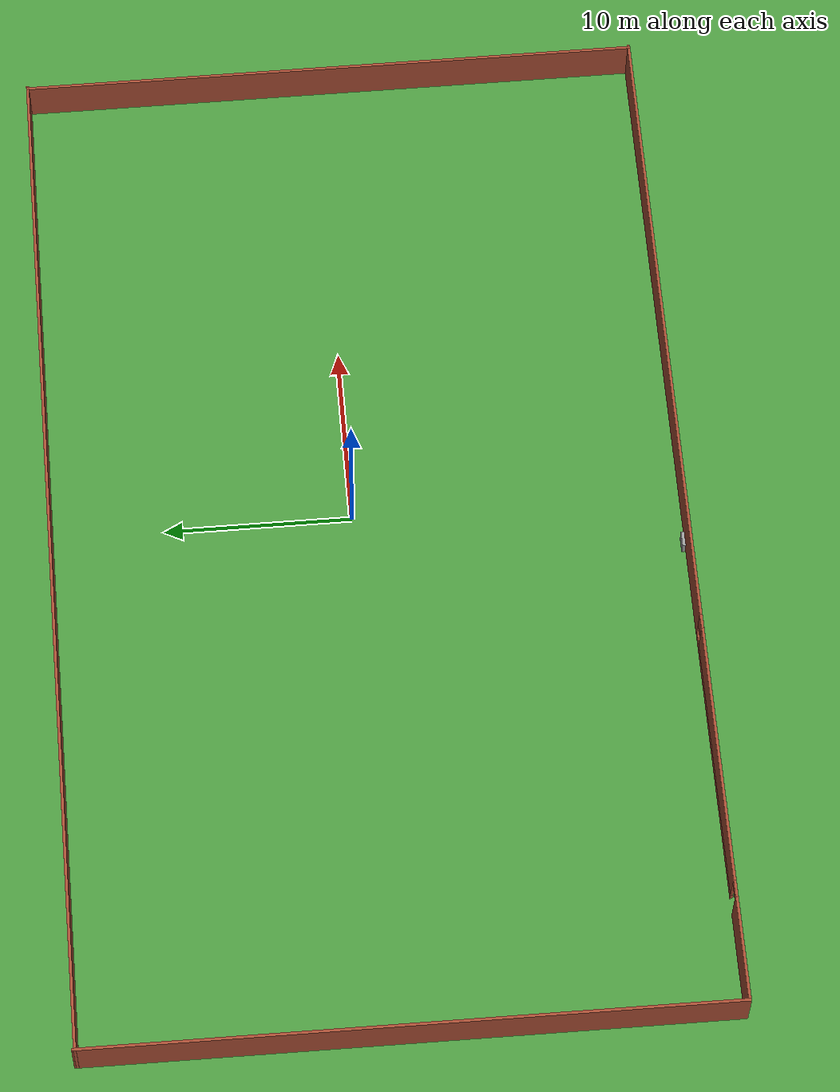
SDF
<sdf version="1.7">
 <world name="default">
  <scene>
   <sky><clouds><speed>12</speed></clouds></sky>
   <ambient>0.4 0.4 0.4 1</ambient>
   <background>0.7 0.7 0.7 1</background>
   <shadows>1</shadows>
  </scene>
  <light name="sun" type="directional">
   <pose>0 0 10 0 -0 0</pose>
   <diffuse>0.8 0.8 0.8 1</diffuse>
   <specular>0.2 0.2 0.2 1</specular>
   <attenuation>
    <range>1000</range>
    <constant>0.9</constant>
    <linear>0.01</linear>
    <quadratic>0.001</quadratic>
   </attenuation>
   <direction>-0.5 0.1 -0.9</direction>
   <spot><inner_angle>0</inner_angle><outer_angle>0</outer_angle><falloff>0</falloff></spot>
  </light>
  <model name="custom_ground">
   <static>1</static>
   <link name="link">
    <collision name="collision">
     <geometry><plane><normal>0 0 1</normal><size>100 100</size></plane></geometry>
     <surface><friction><ode><mu>100</mu><mu2>50</mu2></ode></friction></surface>
    </collision>
    <visual name="visual">
     <cast_shadows>0</cast_shadows>
     <geometry><plane><normal>0 0 1</normal><size>100 100</size></plane></geometry>
     <material>
      <script>
       <uri>model://custom_ground/materials/scripts</uri>
       <uri>model://custom_ground/materials/textures/</uri>
       <name>CustomGround/GrassDiffuseSpecular</name>
      </script>
     </material>
    </visual>
   </link>
  </model>
  <gravity>0 0 -9.8</gravity>
  <magnetic_field>6e-06 2.3e-05 -4.2e-05</magnetic_field>
  <atmosphere type="adiabatic"/>
  <physics type="ode">
   <max_step_size>0.001</max_step_size>
   <real_time_factor>1</real_time_factor>
   <real_time_update_rate>1000</real_time_update_rate>
  </physics>
  <spherical_coordinates>
   <surface_model>EARTH_WGS84</surface_model>
   <latitude_deg>0</latitude_deg>
   <longitude_deg>0</longitude_deg>
   <elevation>0</elevation>
   <heading_deg>0</heading_deg>
  </spherical_coordinates>
  <model name="garden_amass">
   <pose>-1.18987 -0.745 0 0 -0 0</pose>
   <link name="Wall_0">
    <collision name="Wall_0_Collision">
     <geometry><box><size>56.7501 0.15 2.5</size></box></geometry>
     <pose>0 0 1.25 0 -0 0</pose>
    </collision>
    <visual name="Wall_0_Visual">
     <pose>0 0 1.25 0 -0 0</pose>
     <geometry><box><size>56.7501 0.15 2.5</size></box></geometry>
     <material>
      <script><uri>file://media/materials/scripts/gazebo.material</uri><name>Gazebo/Bricks</name></script>
      <ambient>0.435294 0.796078 0.67451 1</ambient>
     </material>
     <meta><layer>0</layer></meta>
    </visual>
    <pose>-0.064699 16.7197 0 0 -0 3.14159</pose>
   </link>
   <link name="Wall_17">
    <collision name="Wall_17_Collision">
     <geometry><box><size>33.6698 0.15 2.5</size></box></geometry>
     <pose>0 0 1.25 0 -0 0</pose>
    </collision>
    <visual name="Wall_17_Visual">
     <pose>0 0 1.25 0 -0 0</pose>
     <geometry><box><size>33.6698 0.15 2.5</size></box></geometry>
     <material>
      <script><uri>file://media/materials/scripts/gazebo.material</uri><name>Gazebo/Bricks</name></script>
      <ambient>0.435294 0.796078 0.67451 1</ambient>
     </material>
     <meta><layer>0</layer></meta>
    </visual>
    <pose>28.2196 -0.040083 0 0 -0 -1.56693</pose>
   </link>
   <link name="Wall_18">
    <pose>0.075222 -16.7999 0 0 -0 3.14159</pose>
    <visual name="Wall_18_Visual_0">
     <pose>-10.6309 0 1.25 0 -0 0</pose>
     <geometry><box><size>35.4673 0.15 2.5</size></box></geometry>
     <material>
      <script><uri>file://media/materials/scripts/gazebo.material</uri><name>Gazebo/Bricks</name></script>
      <ambient>0.435294 0.796078 0.67451 1</ambient>
     </material>
     <meta><layer>0</layer></meta>
    </visual>
    <collision name="Wall_18_Collision_0">
     <geometry><box><size>35.4673 0.15 2.5</size></box></geometry>
     <pose>-10.6309 0 1.25 0 -0 0</pose>
    </collision>
    <visual name="Wall_18_Visual_1">
     <pose>25.6409 0 1.25 0 -0 0</pose>
     <geometry><box><size>5.44722 0.15 2.5</size></box></geometry>
     <material>
      <script><uri>file://media/materials/scripts/gazebo.material</uri><name>Gazebo/Bricks</name></script>
      <ambient>0.435294 0.796078 0.67451 1</ambient>
     </material>
     <meta><layer>0</layer></meta>
    </visual>
    <collision name="Wall_18_Collision_1">
     <geometry><box><size>5.44722 0.15 2.5</size></box></geometry>
     <pose>25.6409 0 1.25 0 -0 0</pose>
    </collision>
    <visual name="Wall_18_Visual_2">
     <pose>14.56 0 0.25 0 -0 0</pose>
     <geometry><box><size>14.9145 0.15 0.5</size></box></geometry>
     <material>
      <script><uri>file://media/materials/scripts/gazebo.material</uri><name>Gazebo/Bricks</name></script>
      <ambient>0.435294 0.796078 0.67451 1</ambient>
     </material>
     <meta><layer>0</layer></meta>
    </visual>
    <collision name="Wall_18_Collision_2">
     <geometry><box><size>14.9145 0.15 0.5</size></box></geometry>
     <pose>14.56 0 0.25 0 -0 0</pose>
    </collision>
    <visual name="Wall_18_Visual_3">
     <pose>14.96 0 1.5 0 -0 0</pose>
     <geometry><box><size>14.1145 0.15 2</size></box></geometry>
     <material>
      <script><uri>file://media/materials/scripts/gazebo.material</uri><name>Gazebo/Bricks</name></script>
      <ambient>0.435294 0.796078 0.67451 1</ambient>
     </material>
     <meta><layer>0</layer></meta>
    </visual>
    <collision name="Wall_18_Collision_3">
     <geometry><box><size>14.1145 0.15 2</size></box></geometry>
     <pose>14.96 0 1.5 0 -0 0</pose>
    </collision>
    <visual name="Wall_18_Visual_4">
     <pose>7.50279 0 1.9 0 -0 0</pose>
     <geometry><box><size>0.8 0.15 1.2</size></box></geometry>
     <material>
      <script><uri>file://media/materials/scripts/gazebo.material</uri><name>Gazebo/Bricks</name></script>
      <ambient>0.435294 0.796078 0.67451 1</ambient>
     </material>
     <meta><layer>0</layer></meta>
    </visual>
    <collision name="Wall_18_Collision_4">
     <geometry><box><size>0.8 0.15 1.2</size></box></geometry>
     <pose>7.50279 0 1.9 0 -0 0</pose>
    </collision>
    <visual name="Wall_18_Visual_5">
     <pose>22.4673 0 2.25 0 -0 0</pose>
     <geometry><box><size>0.9 0.15 0.5</size></box></geometry>
     <material>
      <script><uri>file://media/materials/scripts/gazebo.material</uri><name>Gazebo/Bricks</name></script>
      <ambient>0.435294 0.796078 0.67451 1</ambient>
     </material>
     <meta><layer>0</layer></meta>
    </visual>
    <collision name="Wall_18_Collision_5">
     <geometry><box><size>0.9 0.15 0.5</size></box></geometry>
     <pose>22.4673 0 2.25 0 -0 0</pose>
    </collision>
   </link>
   <link name="Wall_20">
    <collision name="Wall_20_Collision">
     <geometry><box><size>33.75 0.15 2.5</size></box></geometry>
     <pose>0 0 1.25 0 -0 0</pose>
    </collision>
    <visual name="Wall_20_Visual">
     <pose>0 0 1.25 0 -0 0</pose>
     <geometry><box><size>33.75 0.15 2.5</size></box></geometry>
     <material>
      <script><uri>file://media/materials/scripts/gazebo.material</uri><name>Gazebo/Bricks</name></script>
      <ambient>0.435294 0.796078 0.67451 1</ambient>
     </material>
     <meta><layer>0</layer></meta>
    </visual>
    <pose>-28.3647 0.000144 0 0 -0 -1.5708</pose>
   </link>
   <link name="Window_1">
    <collision name="Window_1_Collision">
     <geometry><box><size>0.8 0.17 0.8</size></box></geometry>
     <pose>0 0 0.4 0 -0 0</pose>
    </collision>
    <visual name="Window_1_Visual">
     <pose>0 0 0.4 0 -0 0</pose>
     <geometry><box><size>0.8 0.17 0.8</size></box></geometry>
     <material>
      <script><uri>file://media/materials/scripts/gazebo.material</uri><name>Gazebo/Grey</name></script>
     </material>
    </visual>
    <pose>-1.95668 -16.5338 0.5 0 -0 0</pose>
   </link>
   <static>1</static>
  </model>
 </world>
</sdf>
